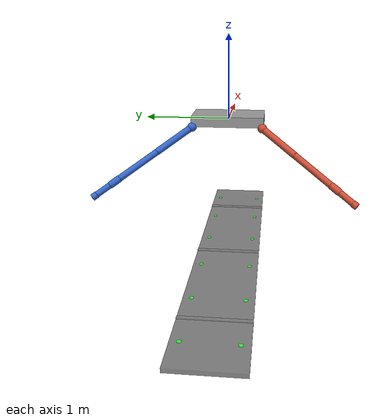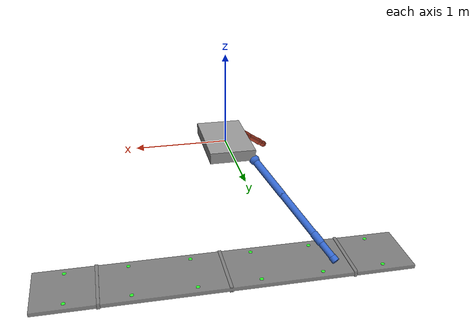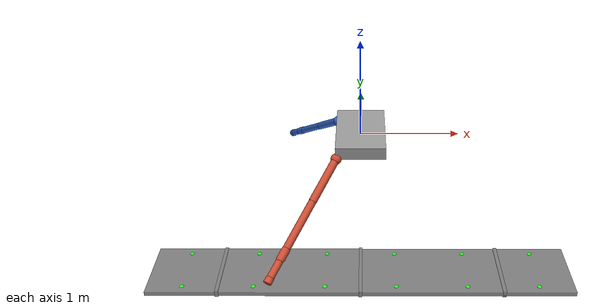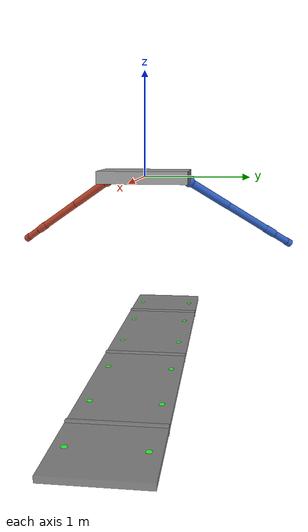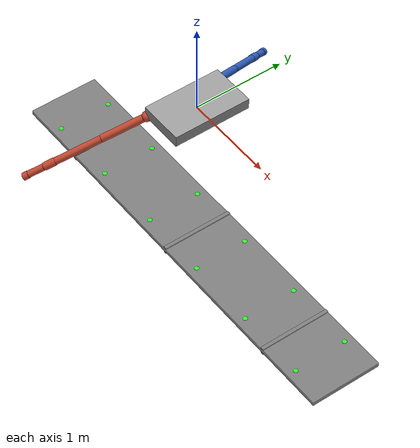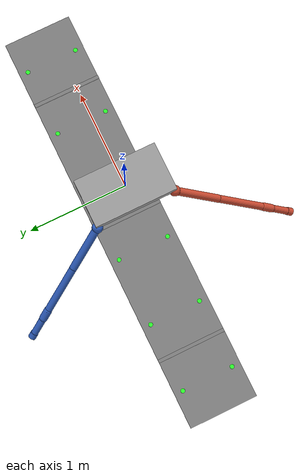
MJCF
<mujoco model="VISPA_crawling">

  <!-- ==================== COMPILER ==================== -->
  <compiler angle="radian" eulerseq="XYZ" autolimits="true"/>

  <!-- ==================== OPTIONS ==================== -->
  <option gravity="0 0 0" timestep="0.001" integrator="RK4">
    <!-- RK4: best momentum conservation for coupled floating-base systems
         In MuJoCo 3.5: Euler=0, RK4=1, implicit=2, implicitfast=3 -->
    <flag energy="enable" contact="enable"/>
  </option>

  <!-- ==================== VISUAL ==================== -->
  <visual>
    <headlight diffuse="0.6 0.6 0.6" ambient="0.3 0.3 0.3"/>
    <rgba com="0 1 0 0" contactforce="1 0 0 0.5"/>
    <scale com="0.05" contactwidth="0.02" contactheight="0.05"
           forcewidth="0.02" framelength="0.15" framewidth="0.005"/>
  </visual>

  <!-- ==================== DEFAULTS ==================== -->
  <default>
    <!-- Robot joints -->
    <default class="robot_joint">
      <joint damping="0.05" armature="0.05" limited="true"
             range="-3.14159 3.14159"/>
      <default class="arm_a">
        <geom rgba="0.2 0.4 0.8 1" contype="0" conaffinity="0"/>
      </default>
      <default class="arm_b">
        <geom rgba="0.8 0.3 0.2 1" contype="0" conaffinity="0"/>
      </default>
    </default>
    <!-- Structure -->
    <default class="structure">
      <geom rgba="0.4 0.4 0.4 0.8" contype="2" conaffinity="2"/>
    </default>
    <!-- Anchor sites -->
    <default class="anchor">
      <site type="cylinder" size="0.025 0.005" rgba="0 1 0 0.8"/>
    </default>
    <!-- Gripper sites (on tool tips) -->
    <default class="gripper">
      <site type="sphere" size="0.03" rgba="1 1 0 0.8"/>
    </default>
  </default>

  <!-- ==================== WORLDBODY ==================== -->
  <worldbody>
    <!-- Ambient light -->
    <light pos="0 0 5" dir="0 0 -1" diffuse="0.8 0.8 0.8" castshadow="false"/>
    <light pos="3 3 3" dir="-1 -1 -1" diffuse="0.5 0.5 0.5" castshadow="true"/>

    <!-- ============ FLOATING STRUCTURE ============ -->
    <body name="structure" pos="0 0 -1.8">
      <freejoint name="structure_free"/>
      <inertial pos="0 0 0" mass="500"
                fullinertia="42 105 125 0 0 0"/>
      <!-- Main beam -->
      <geom class="structure" type="box" size="2.4 0.4 0.025" name="beam"/>
      <!-- Cross-beams for rigidity visualization -->
      <geom class="structure" type="box" size="0.02 0.4 0.04" pos="-1.6 0 0"/>
      <geom class="structure" type="box" size="0.02 0.4 0.04" pos="0 0 0"/>
      <geom class="structure" type="box" size="0.02 0.4 0.04" pos="1.6 0 0"/>

      <!-- Anchor sites — row A (y = +0.3) -->
      <site name="anchor_1a" class="anchor" pos="-2.0  0.3 0.025"/>
      <site name="anchor_2a" class="anchor" pos="-1.2  0.3 0.025"/>
      <site name="anchor_3a" class="anchor" pos="-0.4  0.3 0.025"/>
      <site name="anchor_4a" class="anchor" pos=" 0.4  0.3 0.025"/>
      <site name="anchor_5a" class="anchor" pos=" 1.2  0.3 0.025"/>
      <site name="anchor_6a" class="anchor" pos=" 2.0  0.3 0.025"/>
      <!-- Anchor sites — row B (y = -0.3) -->
      <site name="anchor_1b" class="anchor" pos="-2.0 -0.3 0.025"/>
      <site name="anchor_2b" class="anchor" pos="-1.2 -0.3 0.025"/>
      <site name="anchor_3b" class="anchor" pos="-0.4 -0.3 0.025"/>
      <site name="anchor_4b" class="anchor" pos=" 0.4 -0.3 0.025"/>
      <site name="anchor_5b" class="anchor" pos=" 1.2 -0.3 0.025"/>
      <site name="anchor_6b" class="anchor" pos=" 2.0 -0.3 0.025"/>
    </body>

    <!-- ============ ROBOT: TORSO (floating base) ============ -->
    <body name="torso" pos="0 0 0">
      <freejoint name="root"/>
      <inertial pos="0 0 0" mass="40.0"
                fullinertia="0.17980580 0.17982988 0.24241079 0 0 0"/>
      <!-- Torso geom: flat box spanning between shoulder joints -->
      <geom type="box" size="0.25 0.43 0.06" rgba="0.6 0.6 0.6 1"
            contype="0" conaffinity="0" name="torso_geom"/>
      <!-- Torso frame site for visualization -->
      <site name="torso_imu" size="0.02" rgba="1 1 1 0.5"/>

      <!-- ========== ARM A (blue) ========== -->
      <!-- Joint_1_a: shoulder yaw -->
      <body name="Link_1_a" pos="-0.240 0.41469 -0.064498"
            euler="-2.0944 0 0.5236">
        <joint name="Joint_1_a" class="robot_joint" type="hinge" axis="0 0 1"/>
        <inertial pos="0 -0.029 -0.043" mass="2.328"
                  fullinertia="0.012 0.007 0.008 0 0 0.003"/>
        <geom class="arm_a" type="sphere" size="0.055" name="link1a_geom"/>

        <!-- Joint_2_a: shoulder pitch -->
        <body name="Link_2_a" pos="0 0 0"
              euler="1.57079632679 -1.57079632679 0">
          <joint name="Joint_2_a" class="robot_joint" type="hinge" axis="0 0 1"/>
          <inertial pos="0.25 0 0.142" mass="3.995"
                    fullinertia="0.010 0.578 0.574 0 0 0"/>
          <geom class="arm_a" type="capsule" fromto="0 0 0  0.5 0 0"
                size="0.04" name="link2a_geom"/>

          <!-- Joint_3_a: elbow -->
          <body name="Link_3_a" pos="0.5 0 0"
                euler="0 0 -1.57079632679">
            <joint name="Joint_3_a" class="robot_joint" type="hinge" axis="0 0 1"/>
            <inertial pos="0 0.043 0.029" mass="2.328"
                      fullinertia="0.012 0.008 0.007 0 0 0.003"/>
            <geom class="arm_a" type="capsule" fromto="0 0 0  0 0.65 0"
                  size="0.038" name="link3a_geom"/>

            <!-- Joint_4_a: wrist 1 -->
            <body name="Link_4_a" pos="0 0.65 0"
                  euler="-1.57079632679 0 0">
              <joint name="Joint_4_a" class="robot_joint" type="hinge" axis="0 0 1"/>
              <inertial pos="0 -0.043 -0.210" mass="3.157"
                        fullinertia="0.199 0.193 0.01 0 0 0.01"/>
              <geom class="arm_a" type="capsule" fromto="0 0 0  0 0 -0.1"
                    size="0.042" name="link4a_geom"/>

              <!-- Joint_5_a: wrist 2 -->
              <body name="Link_5_a" pos="0 0 -0.1"
                    euler="1.57079632679 0 0">
                <joint name="Joint_5_a" class="robot_joint" type="hinge" axis="0 0 1"/>
                <inertial pos="0 0.125 -0.007" mass="2.695"
                          fullinertia="0.029 0.006 0.027 0 0 -0.001"/>
                <geom class="arm_a" type="capsule" fromto="0 0 0  0 0.325 0"
                      size="0.036" name="link5a_geom"/>

                <!-- Joint_6_a: wrist 3 -->
                <body name="Link_6_a" pos="0 0.325 0"
                      euler="-1.57079632679 0 0">
                  <joint name="Joint_6_a" class="robot_joint" type="hinge" axis="0 0 1"/>
                  <inertial pos="0 0 0" mass="0.924"
                            fullinertia="0.002 0.002 0.001 0 0 0"/>
                  <geom class="arm_a" type="cylinder" size="0.04 0.03"
                        name="link6a_geom"/>

                  <!-- tool_a (fixed to Link_6_a) -->
                  <body name="tool_a" pos="0 0 0">
                    <inertial pos="0 0 0" mass="0.1"
                              fullinertia="0.0001 0.0001 0.0001 0 0 0"/>
                    <geom class="arm_a" type="sphere" size="0.025"
                          name="tool_a_geom" rgba="0.2 0.4 0.8 0.5"/>
                    <!-- Gripper attachment site -->
                    <site name="gripper_a" class="gripper"/>
                  </body>

                </body>
              </body>
            </body>
          </body>
        </body>
      </body>

      <!-- ========== ARM B (red) ========== -->
      <!-- Joint_1_b: shoulder yaw -->
      <body name="Link_1_b" pos="-0.240 -0.41469 -0.064498"
            euler="1.047197551 3.14159265359 -0.5236">
        <joint name="Joint_1_b" class="robot_joint" type="hinge" axis="0 0 1"/>
        <inertial pos="0 -0.029 -0.043" mass="2.328"
                  fullinertia="0.012 0.007 0.008 0 0 0.003"/>
        <geom class="arm_b" type="sphere" size="0.055" name="link1b_geom"/>

        <!-- Joint_2_b: shoulder pitch -->
        <body name="Link_2_b" pos="0 0 0"
              euler="1.57079632679 -1.57079632679 0">
          <joint name="Joint_2_b" class="robot_joint" type="hinge" axis="0 0 1"/>
          <inertial pos="0.25 0 0.142" mass="3.995"
                    fullinertia="0.010 0.578 0.574 0 0 0"/>
          <geom class="arm_b" type="capsule" fromto="0 0 0  0.5 0 0"
                size="0.04" name="link2b_geom"/>

          <!-- Joint_3_b: elbow -->
          <body name="Link_3_b" pos="0.5 0 0"
                euler="0 0 -1.57079632679">
            <joint name="Joint_3_b" class="robot_joint" type="hinge" axis="0 0 1"/>
            <inertial pos="0 0.043 0.029" mass="2.328"
                      fullinertia="0.012 0.008 0.007 0 0 0.003"/>
            <geom class="arm_b" type="capsule" fromto="0 0 0  0 0.65 0"
                  size="0.038" name="link3b_geom"/>

            <!-- Joint_4_b: wrist 1 -->
            <body name="Link_4_b" pos="0 0.65 0"
                  euler="-1.57079632679 0 0">
              <joint name="Joint_4_b" class="robot_joint" type="hinge" axis="0 0 1"/>
              <inertial pos="0 -0.043 -0.210" mass="3.157"
                        fullinertia="0.199 0.193 0.01 0 0 0.01"/>
              <geom class="arm_b" type="capsule" fromto="0 0 0  0 0 -0.1"
                    size="0.042" name="link4b_geom"/>

              <!-- Joint_5_b: wrist 2 -->
              <body name="Link_5_b" pos="0 0 -0.1"
                    euler="1.57079632679 0 0">
                <joint name="Joint_5_b" class="robot_joint" type="hinge" axis="0 0 1"/>
                <inertial pos="0 0.125 -0.007" mass="2.695"
                          fullinertia="0.029 0.006 0.027 0 0 -0.001"/>
                <geom class="arm_b" type="capsule" fromto="0 0 0  0 0.325 0"
                      size="0.036" name="link5b_geom"/>

                <!-- Joint_6_b: wrist 3 -->
                <body name="Link_6_b" pos="0 0.325 0"
                      euler="-1.57079632679 0 0">
                  <joint name="Joint_6_b" class="robot_joint" type="hinge" axis="0 0 1"/>
                  <inertial pos="0 0 0" mass="0.924"
                            fullinertia="0.002 0.002 0.001 0 0 0"/>
                  <geom class="arm_b" type="cylinder" size="0.04 0.03"
                        name="link6b_geom"/>

                  <!-- tool_b (fixed to Link_6_b) -->
                  <body name="tool_b" pos="0 0 0">
                    <inertial pos="0 0 0" mass="0.1"
                              fullinertia="0.0001 0.0001 0.0001 0 0 0"/>
                    <geom class="arm_b" type="sphere" size="0.025"
                          name="tool_b_geom" rgba="0.8 0.3 0.2 0.5"/>
                    <!-- Gripper attachment site -->
                    <site name="gripper_b" class="gripper"/>
                  </body>

                </body>
              </body>
            </body>
          </body>
        </body>
      </body>

    </body> <!-- end torso -->
  </worldbody>

  <!-- ==================== ACTUATORS ==================== -->
  <!-- Direct torque control: ctrl maps 1-to-1 to joint torque [N·m] -->
  <actuator>
    <!-- Arm A -->
    <motor name="act_J1a" joint="Joint_1_a" gear="1" ctrlrange="-50 50"/>
    <motor name="act_J2a" joint="Joint_2_a" gear="1" ctrlrange="-50 50"/>
    <motor name="act_J3a" joint="Joint_3_a" gear="1" ctrlrange="-50 50"/>
    <motor name="act_J4a" joint="Joint_4_a" gear="1" ctrlrange="-50 50"/>
    <motor name="act_J5a" joint="Joint_5_a" gear="1" ctrlrange="-50 50"/>
    <motor name="act_J6a" joint="Joint_6_a" gear="1" ctrlrange="-50 50"/>
    <!-- Arm B -->
    <motor name="act_J1b" joint="Joint_1_b" gear="1" ctrlrange="-50 50"/>
    <motor name="act_J2b" joint="Joint_2_b" gear="1" ctrlrange="-50 50"/>
    <motor name="act_J3b" joint="Joint_3_b" gear="1" ctrlrange="-50 50"/>
    <motor name="act_J4b" joint="Joint_4_b" gear="1" ctrlrange="-50 50"/>
    <motor name="act_J5b" joint="Joint_5_b" gear="1" ctrlrange="-50 50"/>
    <motor name="act_J6b" joint="Joint_6_b" gear="1" ctrlrange="-50 50"/>
  </actuator>

  <!-- ==================== EQUALITY CONSTRAINTS (Gripper Welds) ==================== -->
  <equality>
    <!-- Arm A → structure anchors (row A) -->
    <weld name="grip_a_to_1a" site1="gripper_a" site2="anchor_1a" solref="0.003 1" active="false"/>
    <weld name="grip_a_to_2a" site1="gripper_a" site2="anchor_2a" solref="0.003 1" active="false"/>
    <weld name="grip_a_to_3a" site1="gripper_a" site2="anchor_3a" solref="0.003 1" active="true"/>
    <weld name="grip_a_to_4a" site1="gripper_a" site2="anchor_4a" solref="0.003 1" active="false"/>
    <weld name="grip_a_to_5a" site1="gripper_a" site2="anchor_5a" solref="0.003 1" active="false"/>
    <weld name="grip_a_to_6a" site1="gripper_a" site2="anchor_6a" solref="0.003 1" active="false"/>

    <!-- Arm B → structure anchors (row B) -->
    <weld name="grip_b_to_1b" site1="gripper_b" site2="anchor_1b" solref="0.003 1" active="false"/>
    <weld name="grip_b_to_2b" site1="gripper_b" site2="anchor_2b" solref="0.003 1" active="false"/>
    <weld name="grip_b_to_3b" site1="gripper_b" site2="anchor_3b" solref="0.003 1" active="true"/>
    <weld name="grip_b_to_4b" site1="gripper_b" site2="anchor_4b" solref="0.003 1" active="false"/>
    <weld name="grip_b_to_5b" site1="gripper_b" site2="anchor_5b" solref="0.003 1" active="false"/>
    <weld name="grip_b_to_6b" site1="gripper_b" site2="anchor_6b" solref="0.003 1" active="false"/>
  </equality>

  <!-- ==================== CONTACT PAIRS ==================== -->
  <!-- Exclude self-collision within each arm chain for performance.
       Only keep collisions between: arms ↔ structure, arm_a ↔ arm_b. -->
  <!-- Contact exclusions not needed: all robot geoms have contype=0.
       Re-enable if collision avoidance is added later. -->
  <contact/>

  <!-- ==================== SENSORS ==================== -->
  <sensor>
    <!-- Base pose and velocity (for MPC feedback) -->
    <framepos    name="torso_pos"    objtype="body" objname="torso"/>
    <framequat   name="torso_quat"   objtype="body" objname="torso"/>
    <framelinvel name="torso_linvel" objtype="body" objname="torso"/>
    <frameangvel name="torso_angvel" objtype="body" objname="torso"/>
    <!-- Structure attitude (for disturbance measurement) -->
    <framequat   name="struct_quat"   objtype="body" objname="structure"/>
    <frameangvel name="struct_angvel" objtype="body" objname="structure"/>
    <!-- End-effector positions -->
    <framepos name="tool_a_pos" objtype="body" objname="tool_a"/>
    <framepos name="tool_b_pos" objtype="body" objname="tool_b"/>
    <!-- Joint torque sensors (for debugging/monitoring) -->
    <jointactuatorfrc name="tau_J1a" joint="Joint_1_a"/>
    <jointactuatorfrc name="tau_J1b" joint="Joint_1_b"/>
  </sensor>

  <!-- ==================== KEYFRAMES ==================== -->
  <!-- Predefined configurations for testing -->
  <keyframe>
    <key name="home" qpos="0 0 0  1 0 0 0
                            0 0 -1.8  1 0 0 0
                            0 0 0 0 0 0  0 0 0 0 0 0"/>
  </keyframe>

</mujoco>
